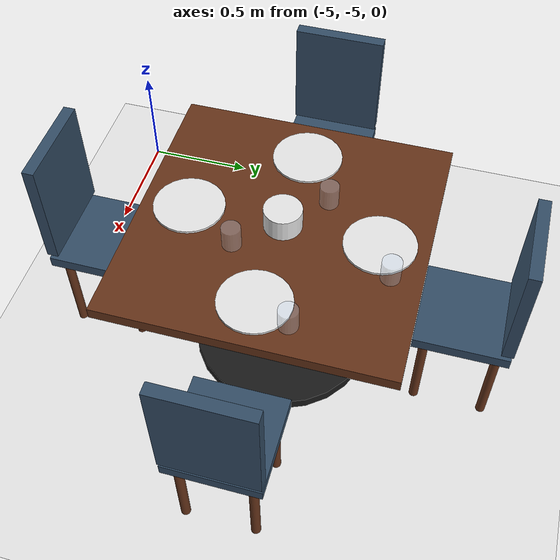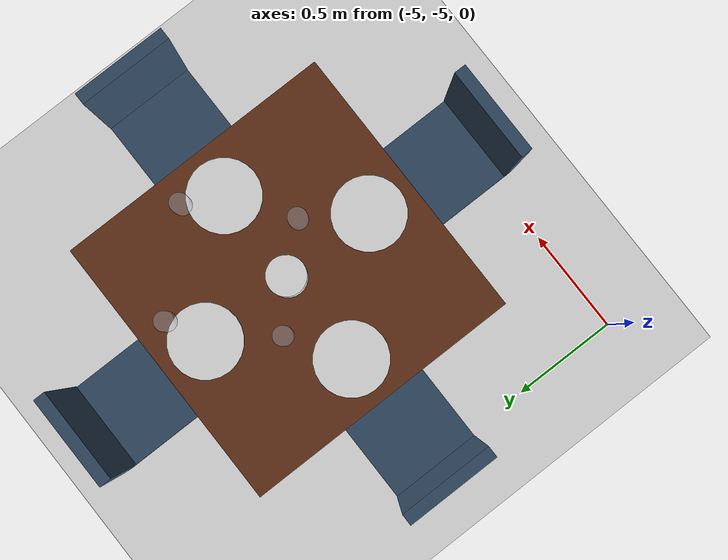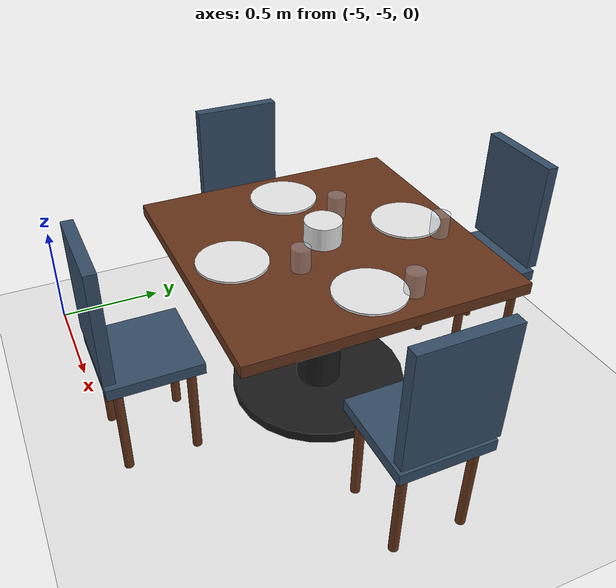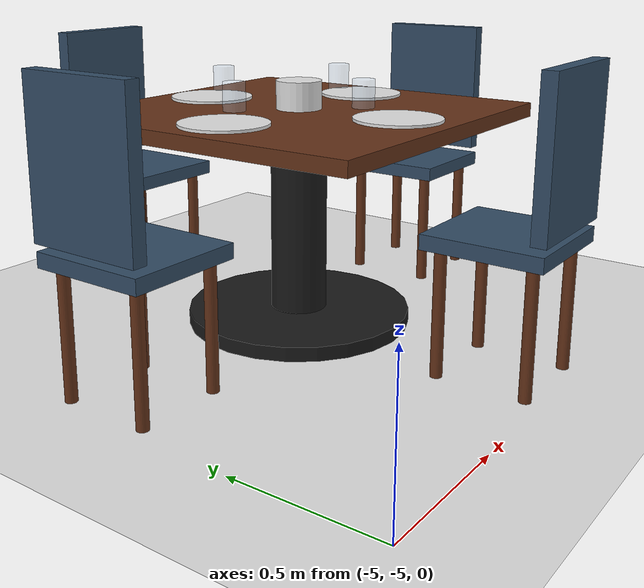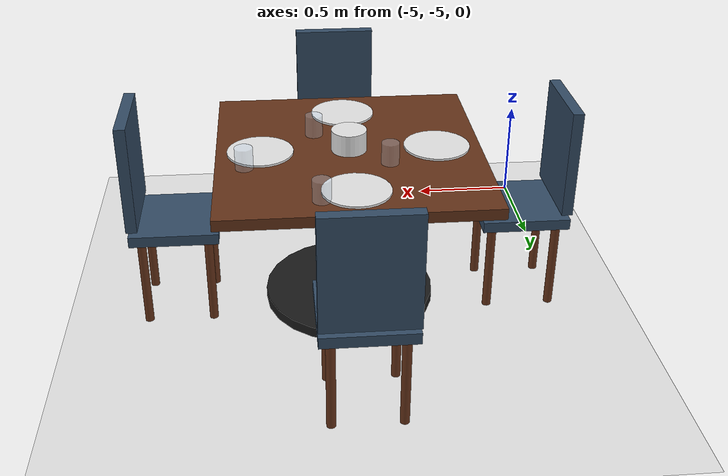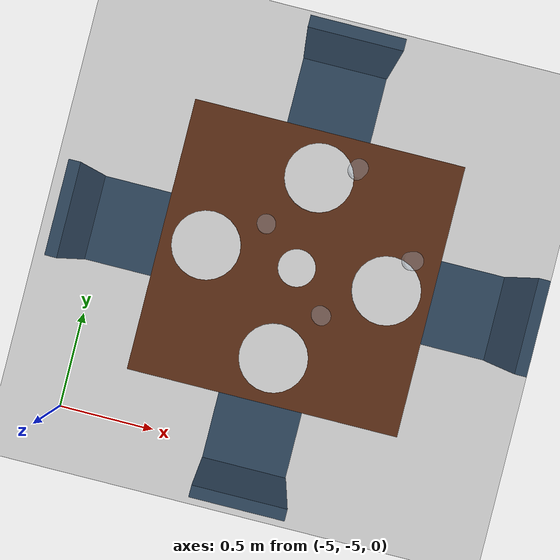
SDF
<sdf version="1.9">
 <world name="argo_restaurant">
  <model name="ground_plane">
   <static>true</static>
   <link name="link">
    <collision name="collision">
     <geometry><plane><normal>0 0 1</normal><size>100 100</size></plane></geometry>
    </collision>
    <visual name="visual">
     <geometry><plane><normal>0 0 1</normal><size>100 100</size></plane></geometry>
     <material>
      <ambient>0.9 0.9 0.9 1</ambient>
      <diffuse>0.9 0.9 0.9 1</diffuse>
      <specular>0.1 0.1 0.1 1</specular>
      <pbr><metal><roughness>0.1</roughness><metalness>0.0</metalness></metal></pbr>
     </material>
    </visual>
   </link>
  </model>
  <model name="table_0">
   <static>true</static>
   <link name="top_link">
    <pose>-4.0 -4.0 0.75 0 0 0</pose>
    <collision name="top_collision"><geometry><box><size>1.2 1.2 0.05</size></box></geometry></collision>
    <visual name="top_visual">
     <geometry><box><size>1.2 1.2 0.05</size></box></geometry>
     <material>
      <ambient>0.4 0.2 0.1 1</ambient>
      <diffuse>0.4 0.2 0.1 1</diffuse>
      <specular>0.1 0.1 0.1 1</specular>
      <pbr><metal><roughness>0.7</roughness><metalness>0.1</metalness></metal></pbr>
     </material>
    </visual>
   </link>
   <link name="leg_link">
    <pose>-4.0 -4.0 0.375 0 0 0</pose>
    <collision name="leg_collision">
     <geometry><cylinder><radius>0.1</radius><length>0.75</length></cylinder></geometry>
    </collision>
    <visual name="leg_visual">
     <geometry><cylinder><radius>0.1</radius><length>0.75</length></cylinder></geometry>
     <material>
      <ambient>0.1 0.1 0.1 1</ambient>
      <diffuse>0.1 0.1 0.1 1</diffuse>
      <specular>0.1 0.1 0.1 1</specular>
      <pbr><metal><roughness>0.5</roughness><metalness>0.0</metalness></metal></pbr>
     </material>
    </visual>
   </link>
   <link name="base_link">
    <pose>-4.0 -4.0 0.025 0 0 0</pose>
    <collision name="base_collision">
     <geometry><cylinder><radius>0.4</radius><length>0.05</length></cylinder></geometry>
    </collision>
    <visual name="base_visual">
     <geometry><cylinder><radius>0.4</radius><length>0.05</length></cylinder></geometry>
     <material>
      <ambient>0.1 0.1 0.1 1</ambient>
      <diffuse>0.1 0.1 0.1 1</diffuse>
      <specular>0.1 0.1 0.1 1</specular>
      <pbr><metal><roughness>0.5</roughness><metalness>0.0</metalness></metal></pbr>
     </material>
    </visual>
   </link>
   <link name="chair_0_seat_link">
    <pose>-4.0 -3.2 0.45 0 0 0</pose>
    <collision name="chair_0_seat_collision"><geometry><box><size>0.4 0.4 0.05</size></box></geometry></collision>
    <visual name="chair_0_seat_visual">
     <geometry><box><size>0.4 0.4 0.05</size></box></geometry>
     <material>
      <ambient>0.2 0.3 0.4 1</ambient>
      <diffuse>0.2 0.3 0.4 1</diffuse>
      <specular>0.1 0.1 0.1 1</specular>
      <pbr><metal><roughness>0.9</roughness><metalness>0.0</metalness></metal></pbr>
     </material>
    </visual>
   </link>
   <link name="chair_0_leg_-0.15_-0.15_link">
    <pose>-4.15 -3.35 0.225 0 0 0</pose>
    <collision name="chair_0_leg_-0.15_-0.15_collision">
     <geometry><cylinder><radius>0.02</radius><length>0.45</length></cylinder></geometry>
    </collision>
    <visual name="chair_0_leg_-0.15_-0.15_visual">
     <geometry><cylinder><radius>0.02</radius><length>0.45</length></cylinder></geometry>
     <material>
      <ambient>0.4 0.2 0.1 1</ambient>
      <diffuse>0.4 0.2 0.1 1</diffuse>
      <specular>0.1 0.1 0.1 1</specular>
      <pbr><metal><roughness>0.7</roughness><metalness>0.1</metalness></metal></pbr>
     </material>
    </visual>
   </link>
   <link name="chair_0_leg_0.15_-0.15_link">
    <pose>-3.85 -3.35 0.225 0 0 0</pose>
    <collision name="chair_0_leg_0.15_-0.15_collision">
     <geometry><cylinder><radius>0.02</radius><length>0.45</length></cylinder></geometry>
    </collision>
    <visual name="chair_0_leg_0.15_-0.15_visual">
     <geometry><cylinder><radius>0.02</radius><length>0.45</length></cylinder></geometry>
     <material>
      <ambient>0.4 0.2 0.1 1</ambient>
      <diffuse>0.4 0.2 0.1 1</diffuse>
      <specular>0.1 0.1 0.1 1</specular>
      <pbr><metal><roughness>0.7</roughness><metalness>0.1</metalness></metal></pbr>
     </material>
    </visual>
   </link>
   <link name="chair_0_leg_-0.15_0.15_link">
    <pose>-4.15 -3.0500000000000003 0.225 0 0 0</pose>
    <collision name="chair_0_leg_-0.15_0.15_collision">
     <geometry><cylinder><radius>0.02</radius><length>0.45</length></cylinder></geometry>
    </collision>
    <visual name="chair_0_leg_-0.15_0.15_visual">
     <geometry><cylinder><radius>0.02</radius><length>0.45</length></cylinder></geometry>
     <material>
      <ambient>0.4 0.2 0.1 1</ambient>
      <diffuse>0.4 0.2 0.1 1</diffuse>
      <specular>0.1 0.1 0.1 1</specular>
      <pbr><metal><roughness>0.7</roughness><metalness>0.1</metalness></metal></pbr>
     </material>
    </visual>
   </link>
   <link name="chair_0_leg_0.15_0.15_link">
    <pose>-3.85 -3.0500000000000003 0.225 0 0 0</pose>
    <collision name="chair_0_leg_0.15_0.15_collision">
     <geometry><cylinder><radius>0.02</radius><length>0.45</length></cylinder></geometry>
    </collision>
    <visual name="chair_0_leg_0.15_0.15_visual">
     <geometry><cylinder><radius>0.02</radius><length>0.45</length></cylinder></geometry>
     <material>
      <ambient>0.4 0.2 0.1 1</ambient>
      <diffuse>0.4 0.2 0.1 1</diffuse>
      <specular>0.1 0.1 0.1 1</specular>
      <pbr><metal><roughness>0.7</roughness><metalness>0.1</metalness></metal></pbr>
     </material>
    </visual>
   </link>
   <link name="chair_0_back_link">
    <pose>-4.0 -3.02 0.75 0 0 0</pose>
    <collision name="chair_0_back_collision"><geometry><box><size>0.4 0.05 0.5</size></box></geometry></collision>
    <visual name="chair_0_back_visual">
     <geometry><box><size>0.4 0.05 0.5</size></box></geometry>
     <material>
      <ambient>0.2 0.3 0.4 1</ambient>
      <diffuse>0.2 0.3 0.4 1</diffuse>
      <specular>0.1 0.1 0.1 1</specular>
      <pbr><metal><roughness>0.9</roughness><metalness>0.0</metalness></metal></pbr>
     </material>
    </visual>
   </link>
   <link name="chair_1_seat_link">
    <pose>-4.0 -4.8 0.45 0 0 3.1415</pose>
    <collision name="chair_1_seat_collision"><geometry><box><size>0.4 0.4 0.05</size></box></geometry></collision>
    <visual name="chair_1_seat_visual">
     <geometry><box><size>0.4 0.4 0.05</size></box></geometry>
     <material>
      <ambient>0.2 0.3 0.4 1</ambient>
      <diffuse>0.2 0.3 0.4 1</diffuse>
      <specular>0.1 0.1 0.1 1</specular>
      <pbr><metal><roughness>0.9</roughness><metalness>0.0</metalness></metal></pbr>
     </material>
    </visual>
   </link>
   <link name="chair_1_leg_-0.15_-0.15_link">
    <pose>-4.15 -4.95 0.225 0 0 0</pose>
    <collision name="chair_1_leg_-0.15_-0.15_collision">
     <geometry><cylinder><radius>0.02</radius><length>0.45</length></cylinder></geometry>
    </collision>
    <visual name="chair_1_leg_-0.15_-0.15_visual">
     <geometry><cylinder><radius>0.02</radius><length>0.45</length></cylinder></geometry>
     <material>
      <ambient>0.4 0.2 0.1 1</ambient>
      <diffuse>0.4 0.2 0.1 1</diffuse>
      <specular>0.1 0.1 0.1 1</specular>
      <pbr><metal><roughness>0.7</roughness><metalness>0.1</metalness></metal></pbr>
     </material>
    </visual>
   </link>
   <link name="chair_1_leg_0.15_-0.15_link">
    <pose>-3.85 -4.95 0.225 0 0 0</pose>
    <collision name="chair_1_leg_0.15_-0.15_collision">
     <geometry><cylinder><radius>0.02</radius><length>0.45</length></cylinder></geometry>
    </collision>
    <visual name="chair_1_leg_0.15_-0.15_visual">
     <geometry><cylinder><radius>0.02</radius><length>0.45</length></cylinder></geometry>
     <material>
      <ambient>0.4 0.2 0.1 1</ambient>
      <diffuse>0.4 0.2 0.1 1</diffuse>
      <specular>0.1 0.1 0.1 1</specular>
      <pbr><metal><roughness>0.7</roughness><metalness>0.1</metalness></metal></pbr>
     </material>
    </visual>
   </link>
   <link name="chair_1_leg_-0.15_0.15_link">
    <pose>-4.15 -4.6499999999999995 0.225 0 0 0</pose>
    <collision name="chair_1_leg_-0.15_0.15_collision">
     <geometry><cylinder><radius>0.02</radius><length>0.45</length></cylinder></geometry>
    </collision>
    <visual name="chair_1_leg_-0.15_0.15_visual">
     <geometry><cylinder><radius>0.02</radius><length>0.45</length></cylinder></geometry>
     <material>
      <ambient>0.4 0.2 0.1 1</ambient>
      <diffuse>0.4 0.2 0.1 1</diffuse>
      <specular>0.1 0.1 0.1 1</specular>
      <pbr><metal><roughness>0.7</roughness><metalness>0.1</metalness></metal></pbr>
     </material>
    </visual>
   </link>
   <link name="chair_1_leg_0.15_0.15_link">
    <pose>-3.85 -4.6499999999999995 0.225 0 0 0</pose>
    <collision name="chair_1_leg_0.15_0.15_collision">
     <geometry><cylinder><radius>0.02</radius><length>0.45</length></cylinder></geometry>
    </collision>
    <visual name="chair_1_leg_0.15_0.15_visual">
     <geometry><cylinder><radius>0.02</radius><length>0.45</length></cylinder></geometry>
     <material>
      <ambient>0.4 0.2 0.1 1</ambient>
      <diffuse>0.4 0.2 0.1 1</diffuse>
      <specular>0.1 0.1 0.1 1</specular>
      <pbr><metal><roughness>0.7</roughness><metalness>0.1</metalness></metal></pbr>
     </material>
    </visual>
   </link>
   <link name="chair_1_back_link">
    <pose>-4.000016677646139 -4.979999999227378 0.75 0 0 3.1415</pose>
    <collision name="chair_1_back_collision"><geometry><box><size>0.4 0.05 0.5</size></box></geometry></collision>
    <visual name="chair_1_back_visual">
     <geometry><box><size>0.4 0.05 0.5</size></box></geometry>
     <material>
      <ambient>0.2 0.3 0.4 1</ambient>
      <diffuse>0.2 0.3 0.4 1</diffuse>
      <specular>0.1 0.1 0.1 1</specular>
      <pbr><metal><roughness>0.9</roughness><metalness>0.0</metalness></metal></pbr>
     </material>
    </visual>
   </link>
   <link name="chair_2_seat_link">
    <pose>-3.2 -4.0 0.45 0 0 -1.5707</pose>
    <collision name="chair_2_seat_collision"><geometry><box><size>0.4 0.4 0.05</size></box></geometry></collision>
    <visual name="chair_2_seat_visual">
     <geometry><box><size>0.4 0.4 0.05</size></box></geometry>
     <material>
      <ambient>0.2 0.3 0.4 1</ambient>
      <diffuse>0.2 0.3 0.4 1</diffuse>
      <specular>0.1 0.1 0.1 1</specular>
      <pbr><metal><roughness>0.9</roughness><metalness>0.0</metalness></metal></pbr>
     </material>
    </visual>
   </link>
   <link name="chair_2_leg_-0.15_-0.15_link">
    <pose>-3.35 -4.15 0.225 0 0 0</pose>
    <collision name="chair_2_leg_-0.15_-0.15_collision">
     <geometry><cylinder><radius>0.02</radius><length>0.45</length></cylinder></geometry>
    </collision>
    <visual name="chair_2_leg_-0.15_-0.15_visual">
     <geometry><cylinder><radius>0.02</radius><length>0.45</length></cylinder></geometry>
     <material>
      <ambient>0.4 0.2 0.1 1</ambient>
      <diffuse>0.4 0.2 0.1 1</diffuse>
      <specular>0.1 0.1 0.1 1</specular>
      <pbr><metal><roughness>0.7</roughness><metalness>0.1</metalness></metal></pbr>
     </material>
    </visual>
   </link>
   <link name="chair_2_leg_0.15_-0.15_link">
    <pose>-3.0500000000000003 -4.15 0.225 0 0 0</pose>
    <collision name="chair_2_leg_0.15_-0.15_collision">
     <geometry><cylinder><radius>0.02</radius><length>0.45</length></cylinder></geometry>
    </collision>
    <visual name="chair_2_leg_0.15_-0.15_visual">
     <geometry><cylinder><radius>0.02</radius><length>0.45</length></cylinder></geometry>
     <material>
      <ambient>0.4 0.2 0.1 1</ambient>
      <diffuse>0.4 0.2 0.1 1</diffuse>
      <specular>0.1 0.1 0.1 1</specular>
      <pbr><metal><roughness>0.7</roughness><metalness>0.1</metalness></metal></pbr>
     </material>
    </visual>
   </link>
   <link name="chair_2_leg_-0.15_0.15_link">
    <pose>-3.35 -3.85 0.225 0 0 0</pose>
    <collision name="chair_2_leg_-0.15_0.15_collision">
     <geometry><cylinder><radius>0.02</radius><length>0.45</length></cylinder></geometry>
    </collision>
    <visual name="chair_2_leg_-0.15_0.15_visual">
     <geometry><cylinder><radius>0.02</radius><length>0.45</length></cylinder></geometry>
     <material>
      <ambient>0.4 0.2 0.1 1</ambient>
      <diffuse>0.4 0.2 0.1 1</diffuse>
      <specular>0.1 0.1 0.1 1</specular>
      <pbr><metal><roughness>0.7</roughness><metalness>0.1</metalness></metal></pbr>
     </material>
    </visual>
   </link>
   <link name="chair_2_leg_0.15_0.15_link">
    <pose>-3.0500000000000003 -3.85 0.225 0 0 0</pose>
    <collision name="chair_2_leg_0.15_0.15_collision">
     <geometry><cylinder><radius>0.02</radius><length>0.45</length></cylinder></geometry>
    </collision>
    <visual name="chair_2_leg_0.15_0.15_visual">
     <geometry><cylinder><radius>0.02</radius><length>0.45</length></cylinder></geometry>
     <material>
      <ambient>0.4 0.2 0.1 1</ambient>
      <diffuse>0.4 0.2 0.1 1</diffuse>
      <specular>0.1 0.1 0.1 1</specular>
      <pbr><metal><roughness>0.7</roughness><metalness>0.1</metalness></metal></pbr>
     </material>
    </visual>
   </link>
   <link name="chair_2_back_link">
    <pose>-3.020000000835097 -3.9999826611769453 0.75 0 0 -1.5707</pose>
    <collision name="chair_2_back_collision"><geometry><box><size>0.4 0.05 0.5</size></box></geometry></collision>
    <visual name="chair_2_back_visual">
     <geometry><box><size>0.4 0.05 0.5</size></box></geometry>
     <material>
      <ambient>0.2 0.3 0.4 1</ambient>
      <diffuse>0.2 0.3 0.4 1</diffuse>
      <specular>0.1 0.1 0.1 1</specular>
      <pbr><metal><roughness>0.9</roughness><metalness>0.0</metalness></metal></pbr>
     </material>
    </visual>
   </link>
   <link name="chair_3_seat_link">
    <pose>-4.8 -4.0 0.45 0 0 1.5707</pose>
    <collision name="chair_3_seat_collision"><geometry><box><size>0.4 0.4 0.05</size></box></geometry></collision>
    <visual name="chair_3_seat_visual">
     <geometry><box><size>0.4 0.4 0.05</size></box></geometry>
     <material>
      <ambient>0.2 0.3 0.4 1</ambient>
      <diffuse>0.2 0.3 0.4 1</diffuse>
      <specular>0.1 0.1 0.1 1</specular>
      <pbr><metal><roughness>0.9</roughness><metalness>0.0</metalness></metal></pbr>
     </material>
    </visual>
   </link>
   <link name="chair_3_leg_-0.15_-0.15_link">
    <pose>-4.95 -4.15 0.225 0 0 0</pose>
    <collision name="chair_3_leg_-0.15_-0.15_collision">
     <geometry><cylinder><radius>0.02</radius><length>0.45</length></cylinder></geometry>
    </collision>
    <visual name="chair_3_leg_-0.15_-0.15_visual">
     <geometry><cylinder><radius>0.02</radius><length>0.45</length></cylinder></geometry>
     <material>
      <ambient>0.4 0.2 0.1 1</ambient>
      <diffuse>0.4 0.2 0.1 1</diffuse>
      <specular>0.1 0.1 0.1 1</specular>
      <pbr><metal><roughness>0.7</roughness><metalness>0.1</metalness></metal></pbr>
     </material>
    </visual>
   </link>
   <link name="chair_3_leg_0.15_-0.15_link">
    <pose>-4.6499999999999995 -4.15 0.225 0 0 0</pose>
    <collision name="chair_3_leg_0.15_-0.15_collision">
     <geometry><cylinder><radius>0.02</radius><length>0.45</length></cylinder></geometry>
    </collision>
    <visual name="chair_3_leg_0.15_-0.15_visual">
     <geometry><cylinder><radius>0.02</radius><length>0.45</length></cylinder></geometry>
     <material>
      <ambient>0.4 0.2 0.1 1</ambient>
      <diffuse>0.4 0.2 0.1 1</diffuse>
      <specular>0.1 0.1 0.1 1</specular>
      <pbr><metal><roughness>0.7</roughness><metalness>0.1</metalness></metal></pbr>
     </material>
    </visual>
   </link>
   <link name="chair_3_leg_-0.15_0.15_link">
    <pose>-4.95 -3.85 0.225 0 0 0</pose>
    <collision name="chair_3_leg_-0.15_0.15_collision">
     <geometry><cylinder><radius>0.02</radius><length>0.45</length></cylinder></geometry>
    </collision>
    <visual name="chair_3_leg_-0.15_0.15_visual">
     <geometry><cylinder><radius>0.02</radius><length>0.45</length></cylinder></geometry>
     <material>
      <ambient>0.4 0.2 0.1 1</ambient>
      <diffuse>0.4 0.2 0.1 1</diffuse>
      <specular>0.1 0.1 0.1 1</specular>
      <pbr><metal><roughness>0.7</roughness><metalness>0.1</metalness></metal></pbr>
     </material>
    </visual>
   </link>
   <link name="chair_3_leg_0.15_0.15_link">
    <pose>-4.6499999999999995 -3.85 0.225 0 0 0</pose>
    <collision name="chair_3_leg_0.15_0.15_collision">
     <geometry><cylinder><radius>0.02</radius><length>0.45</length></cylinder></geometry>
    </collision>
    <visual name="chair_3_leg_0.15_0.15_visual">
     <geometry><cylinder><radius>0.02</radius><length>0.45</length></cylinder></geometry>
     <material>
      <ambient>0.4 0.2 0.1 1</ambient>
      <diffuse>0.4 0.2 0.1 1</diffuse>
      <specular>0.1 0.1 0.1 1</specular>
      <pbr><metal><roughness>0.7</roughness><metalness>0.1</metalness></metal></pbr>
     </material>
    </visual>
   </link>
   <link name="chair_3_back_link">
    <pose>-4.979999999164903 -3.9999826611769453 0.75 0 0 1.5707</pose>
    <collision name="chair_3_back_collision"><geometry><box><size>0.4 0.05 0.5</size></box></geometry></collision>
    <visual name="chair_3_back_visual">
     <geometry><box><size>0.4 0.05 0.5</size></box></geometry>
     <material>
      <ambient>0.2 0.3 0.4 1</ambient>
      <diffuse>0.2 0.3 0.4 1</diffuse>
      <specular>0.1 0.1 0.1 1</specular>
      <pbr><metal><roughness>0.9</roughness><metalness>0.0</metalness></metal></pbr>
     </material>
    </visual>
   </link>
   <link name="centerpiece_pot_link">
    <pose>-4.0 -4.0 0.825 0 0 0</pose>
    <collision name="centerpiece_pot_collision">
     <geometry><cylinder><radius>0.08</radius><length>0.1</length></cylinder></geometry>
    </collision>
    <visual name="centerpiece_pot_visual">
     <geometry><cylinder><radius>0.08</radius><length>0.1</length></cylinder></geometry>
     <material>
      <ambient>0.9 0.9 0.9 1</ambient>
      <diffuse>0.9 0.9 0.9 1</diffuse>
      <specular>0.1 0.1 0.1 1</specular>
      <pbr><metal><roughness>0.2</roughness><metalness>0.0</metalness></metal></pbr>
     </material>
    </visual>
   </link>
   <link name="plate_0_link">
    <pose>-4.0 -3.6 0.78 0 0 0</pose>
    <collision name="plate_0_collision">
     <geometry><cylinder><radius>0.15</radius><length>0.01</length></cylinder></geometry>
    </collision>
    <visual name="plate_0_visual">
     <geometry><cylinder><radius>0.15</radius><length>0.01</length></cylinder></geometry>
     <material>
      <ambient>0.9 0.9 0.9 1</ambient>
      <diffuse>0.9 0.9 0.9 1</diffuse>
      <specular>0.1 0.1 0.1 1</specular>
      <pbr><metal><roughness>0.2</roughness><metalness>0.0</metalness></metal></pbr>
     </material>
    </visual>
   </link>
   <link name="glass_0_link">
    <pose>-3.85 -3.53 0.825 0 0 0</pose>
    <collision name="glass_0_collision">
     <geometry><cylinder><radius>0.04</radius><length>0.1</length></cylinder></geometry>
    </collision>
    <visual name="glass_0_visual">
     <geometry><cylinder><radius>0.04</radius><length>0.1</length></cylinder></geometry>
     <material>
      <ambient>0.8 0.9 1.0 0.3</ambient>
      <diffuse>0.8 0.9 1.0 0.3</diffuse>
      <specular>0.9 0.9 0.9 1</specular>
      <pbr><metal><roughness>0.0</roughness><metalness>0.9</metalness></metal></pbr>
     </material>
    </visual>
   </link>
   <link name="plate_1_link">
    <pose>-4.0 -4.4 0.78 0 0 0</pose>
    <collision name="plate_1_collision">
     <geometry><cylinder><radius>0.15</radius><length>0.01</length></cylinder></geometry>
    </collision>
    <visual name="plate_1_visual">
     <geometry><cylinder><radius>0.15</radius><length>0.01</length></cylinder></geometry>
     <material>
      <ambient>0.9 0.9 0.9 1</ambient>
      <diffuse>0.9 0.9 0.9 1</diffuse>
      <specular>0.1 0.1 0.1 1</specular>
      <pbr><metal><roughness>0.2</roughness><metalness>0.0</metalness></metal></pbr>
     </material>
    </visual>
   </link>
   <link name="glass_1_link">
    <pose>-3.85 -4.17 0.825 0 0 0</pose>
    <collision name="glass_1_collision">
     <geometry><cylinder><radius>0.04</radius><length>0.1</length></cylinder></geometry>
    </collision>
    <visual name="glass_1_visual">
     <geometry><cylinder><radius>0.04</radius><length>0.1</length></cylinder></geometry>
     <material>
      <ambient>0.8 0.9 1.0 0.3</ambient>
      <diffuse>0.8 0.9 1.0 0.3</diffuse>
      <specular>0.9 0.9 0.9 1</specular>
      <pbr><metal><roughness>0.0</roughness><metalness>0.9</metalness></metal></pbr>
     </material>
    </visual>
   </link>
   <link name="plate_2_link">
    <pose>-3.6 -4.0 0.78 0 0 0</pose>
    <collision name="plate_2_collision">
     <geometry><cylinder><radius>0.15</radius><length>0.01</length></cylinder></geometry>
    </collision>
    <visual name="plate_2_visual">
     <geometry><cylinder><radius>0.15</radius><length>0.01</length></cylinder></geometry>
     <material>
      <ambient>0.9 0.9 0.9 1</ambient>
      <diffuse>0.9 0.9 0.9 1</diffuse>
      <specular>0.1 0.1 0.1 1</specular>
      <pbr><metal><roughness>0.2</roughness><metalness>0.0</metalness></metal></pbr>
     </material>
    </visual>
   </link>
   <link name="glass_2_link">
    <pose>-3.53 -3.85 0.825 0 0 0</pose>
    <collision name="glass_2_collision">
     <geometry><cylinder><radius>0.04</radius><length>0.1</length></cylinder></geometry>
    </collision>
    <visual name="glass_2_visual">
     <geometry><cylinder><radius>0.04</radius><length>0.1</length></cylinder></geometry>
     <material>
      <ambient>0.8 0.9 1.0 0.3</ambient>
      <diffuse>0.8 0.9 1.0 0.3</diffuse>
      <specular>0.9 0.9 0.9 1</specular>
      <pbr><metal><roughness>0.0</roughness><metalness>0.9</metalness></metal></pbr>
     </material>
    </visual>
   </link>
   <link name="plate_3_link">
    <pose>-4.4 -4.0 0.78 0 0 0</pose>
    <collision name="plate_3_collision">
     <geometry><cylinder><radius>0.15</radius><length>0.01</length></cylinder></geometry>
    </collision>
    <visual name="plate_3_visual">
     <geometry><cylinder><radius>0.15</radius><length>0.01</length></cylinder></geometry>
     <material>
      <ambient>0.9 0.9 0.9 1</ambient>
      <diffuse>0.9 0.9 0.9 1</diffuse>
      <specular>0.1 0.1 0.1 1</specular>
      <pbr><metal><roughness>0.2</roughness><metalness>0.0</metalness></metal></pbr>
     </material>
    </visual>
   </link>
   <link name="glass_3_link">
    <pose>-4.17 -3.85 0.825 0 0 0</pose>
    <collision name="glass_3_collision">
     <geometry><cylinder><radius>0.04</radius><length>0.1</length></cylinder></geometry>
    </collision>
    <visual name="glass_3_visual">
     <geometry><cylinder><radius>0.04</radius><length>0.1</length></cylinder></geometry>
     <material>
      <ambient>0.8 0.9 1.0 0.3</ambient>
      <diffuse>0.8 0.9 1.0 0.3</diffuse>
      <specular>0.9 0.9 0.9 1</specular>
      <pbr><metal><roughness>0.0</roughness><metalness>0.9</metalness></metal></pbr>
     </material>
    </visual>
   </link>
  </model>
 </world>
</sdf>
